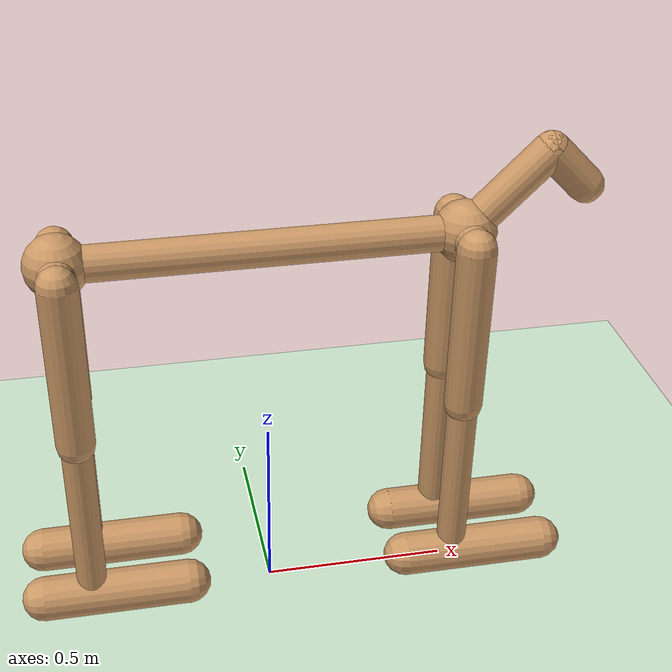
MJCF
<mujoco model="cheetah">
  <compiler angle="degree" coordinate="global" inertiafromgeom="true"/>
  <default>
    <joint armature="0.01" damping=".1" limited="true"/>
    <geom conaffinity="0" condim="3" contype="1" density="1000" friction=".7 .1 .1" rgba="0.8 0.6 .4 1"/>
  </default>
  <option integrator="RK4" timestep="0.002"/>

  <asset>
    <texture builtin="gradient" height="100" rgb1="1 1 1" rgb2="0 0 0" type="skybox" width="100"/>
    <texture builtin="flat" height="1278" mark="cross" markrgb="1 1 1" name="texgeom" random="0.01" rgb1="0.8 0.6 0.4" rgb2="0.8 0.6 0.4" type="cube" width="127"/>
    <texture builtin="checker" height="100" name="texplane" rgb1="0 0 0" rgb2="0.8 0.8 0.8" type="2d" width="100"/>
    <material name="MatPlane" reflectance="0.5" shininess="1" specular="1" texrepeat="60 60" texture="texplane"/>
    <material name="geom" texture="texgeom" texuniform="true"/>
  </asset>

  <worldbody>
    <light cutoff="100" diffuse="1 1 1" dir="-0 0 -1.3" directional="true" exponent="1" pos="0 0 1.3" specular=".1 .1 .1"/>
    <geom conaffinity="1" condim="3" material="MatPlane" name="floor" pos="0 0 0" rgba="0.8 0.9 0.8 1" size="40 40 40" type="plane"/>

    <body name="torso" pos="0 0 1.25">
      <camera mode="trackcom" name="tilted" pos="2.7 3 1" xyaxes="1 -.9 0 0 0 -1" />
      <camera name="track" mode="trackcom" pos="0 3 1" xyaxes="1 0 0 0 0 -1"/>
      <joint armature="0" axis="1 0 0" damping="0" limited="false" name="rootx" pos="0 0 0" stiffness="0" type="slide"/>
      <joint armature="0" axis="0 0 1" damping="0" limited="false" name="rootz" pos="0 0 0" ref="1.25" stiffness="0" type="slide"/>
      <joint armature="0" axis="0 1 0" damping="0" limited="false" name="rooty" pos="0 0 1.25" stiffness="0" type="hinge"/>

      <geom fromto="-.5 0 1.05 .5 0 1.05" name="torso" size="0.046" type="capsule" density="500"/>

      <geom fromto=".5 0 1.05 .7 0 1.25" name="neck" size="0.046" type="capsule" density="500"/>
      <geom fromto=".7 0 1.25 .8 0 1.15" name="head" size="0.046" type="capsule" density="500"/>
      <geom fromto=".5 -0.1 1.05 .5 0.1 1.05" name="torsoFront" size="0.046" type="capsule" density="500"/>
      <geom fromto="-.5 -0.1 1.05 -.5 0.1 1.05" name="torsoBack" size="0.046" type="capsule" density="500"/>

      <site name="front" pos="-.5 0 1.05" size="0.08 0.08" rgba="0.8 0.6 .4 1"/>
      <site name="back" pos=".5 0 1.05" size="0.08 0.08" rgba="0.8 0.6 .4 1"/>

      <body name="thigh_1" pos="0.5 0.1 1.05">
        <joint axis="0 -1 0" name="thighjoint_1" pos="0.5 0.1 1.05" range="-50 50" type="hinge"/>
        <geom friction="0.9" fromto="0.5 0.1 1.05 0.5 0.1 0.6" name="thighgeom_1" size="0.05" type="capsule"/>
        <body name="leg_1" pos="0.5 0.1 0.35">
          <joint axis="0 -1 0" name="legjoint_1" pos="0.5 0.1 0.6" range="-150 0" type="hinge"/>
          <geom friction="0.9" fromto="0.5 0.1 0.6 0.5 0.1 0.1" name="leggeom_1" size="0.04" type="capsule"/>
          <body name="foot_1" pos="0.565 0.1 0.1">
            <joint axis="0 -1 0" name="footjoint_1" pos="0.5 0.1 0.1" range="-45 45" type="hinge"/>
            <geom friction="2.0" fromto="0.37 0.1 0.1 0.76 0.1 0.1" name="footgeom_1" size="0.06" type="capsule"/>
          </body>
        </body>
      </body>

      <body name="thigh_2" pos="0.5 -0.1 1.05">
        <joint axis="0 -1 0" name="thighjoint_2" pos="0.5 -0.1 1.05" range="-50 50" type="hinge"/>
        <geom friction="0.9" fromto="0.5 -0.1 1.05 0.5 -0.1 0.6" name="thighgeom_2" size="0.05" type="capsule"/>
        <body name="leg_2" pos="0.5 -0.1 0.35">
          <joint axis="0 -1 0" name="legjoint_2" pos="0.5 -0.1 0.6" range="-150 0" type="hinge"/>
          <geom friction="0.9" fromto="0.5 -0.1 0.6 0.5 -0.1 0.1" name="leggeom_2" size="0.04" type="capsule"/>
          <body name="foot_2" pos="0.565 -0.1 0.1">
            <joint axis="0 -1 0" name="footjoint_2" pos="0.5 -0.1 0.1" range="-45 45" type="hinge"/>
            <geom friction="2.0" fromto="0.37 -0.1 0.1 0.76 -0.1 0.1" name="footgeom_2" size="0.06" type="capsule"/>
          </body>
        </body>
      </body>

      <body name="thigh_3" pos="-0.5 0.1 1.05">
        <joint axis="0 -1 0" name="thighjoint_3" pos="-0.5 0.1 1.05" range="-50 50" type="hinge"/>
        <geom friction="0.9" fromto="-0.5 0.1 1.05 -0.5 0.1 0.6" name="thighgeom_3" size="0.05" type="capsule"/>
        <body name="leg_3" pos="-0.5 0.1 0.35">
          <joint axis="0 -1 0" name="legjoint_3" pos="-0.5 0.1 0.6" range="-150 0" type="hinge"/>
          <geom friction="0.9" fromto="-0.5 0.1 0.6 -0.5 0.1 0.1" name="leggeom_3" size="0.04" type="capsule"/>
          <body name="foot_3" pos="-0.435 0.1 0.1">
            <joint axis="0 -1 0" name="footjoint_3" pos="-0.5 0.1 0.1" range="-45 45" type="hinge"/>
            <geom friction="2.0" fromto="-0.63 0.1 0.1 -0.24 0.1 0.1" name="footgeom_3" size="0.06" type="capsule"/>
          </body>
        </body>
      </body>

      <body name="thigh_4" pos="-0.5 -0.1 1.05">
        <joint axis="0 -1 0" name="thighjoint_4" pos="-0.5 -0.1 1.05" range="-50 50" type="hinge"/>
        <geom friction="0.9" fromto="-0.5 -0.1 1.05 -0.5 -0.1 0.6" name="thighgeom_4" size="0.05" type="capsule"/>
        <body name="leg_4" pos="-0.5 -0.1 0.35">
          <joint axis="0 -1 0" name="legjoint_4" pos="-0.5 -0.1 0.6" range="-150 0" type="hinge"/>
          <geom friction="0.9" fromto="-0.5 -0.1 0.6 -0.5 -0.1 0.1" name="leggeom_4" size="0.04" type="capsule"/>
          <body name="foot_4" pos="-0.435 -0.1 0.1">
            <joint axis="0 -1 0" name="footjoint_4" pos="-0.5 -0.1 0.1" range="-45 45" type="hinge"/>
            <geom friction="2.0" fromto="-0.63 -0.1 0.1 -0.24 -0.1 0.1" name="footgeom_4" size="0.06" type="capsule"/>
          </body>
        </body>
      </body>
    </body>
  </worldbody>
  <actuator>
    <motor ctrllimited="true" ctrlrange="-1.0 1.0" gear="100" joint="thighjoint_1"/>
    <motor ctrllimited="true" ctrlrange="-1.0 1.0" gear="100" joint="legjoint_1"/>
    <motor ctrllimited="true" ctrlrange="-1.0 1.0" gear="100" joint="footjoint_1"/>

    <motor ctrllimited="true" ctrlrange="-1.0 1.0" gear="100" joint="thighjoint_2"/>
    <motor ctrllimited="true" ctrlrange="-1.0 1.0" gear="100" joint="legjoint_2"/>
    <motor ctrllimited="true" ctrlrange="-1.0 1.0" gear="100" joint="footjoint_2"/>

    <motor ctrllimited="true" ctrlrange="-1.0 1.0" gear="100" joint="thighjoint_3"/>
    <motor ctrllimited="true" ctrlrange="-1.0 1.0" gear="100" joint="legjoint_3"/>
    <motor ctrllimited="true" ctrlrange="-1.0 1.0" gear="100" joint="footjoint_3"/>

    <motor ctrllimited="true" ctrlrange="-1.0 1.0" gear="100" joint="thighjoint_4"/>
    <motor ctrllimited="true" ctrlrange="-1.0 1.0" gear="100" joint="legjoint_4"/>
    <motor ctrllimited="true" ctrlrange="-1.0 1.0" gear="100" joint="footjoint_4"/>
  </actuator>
</mujoco>
